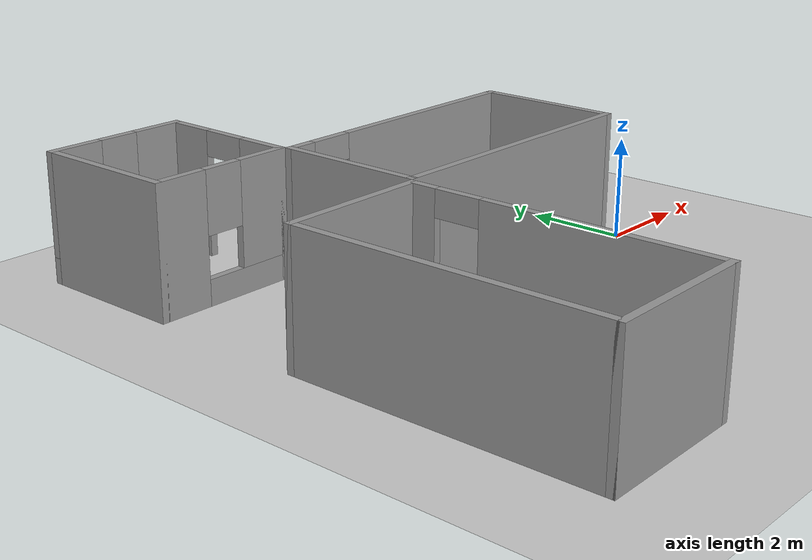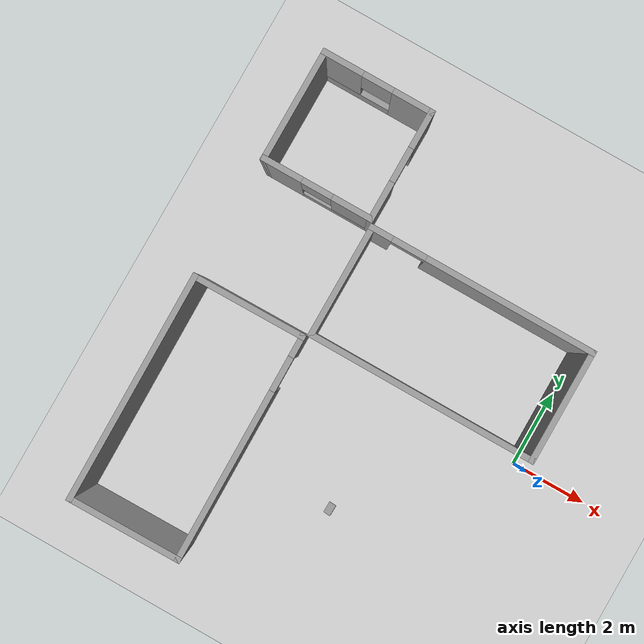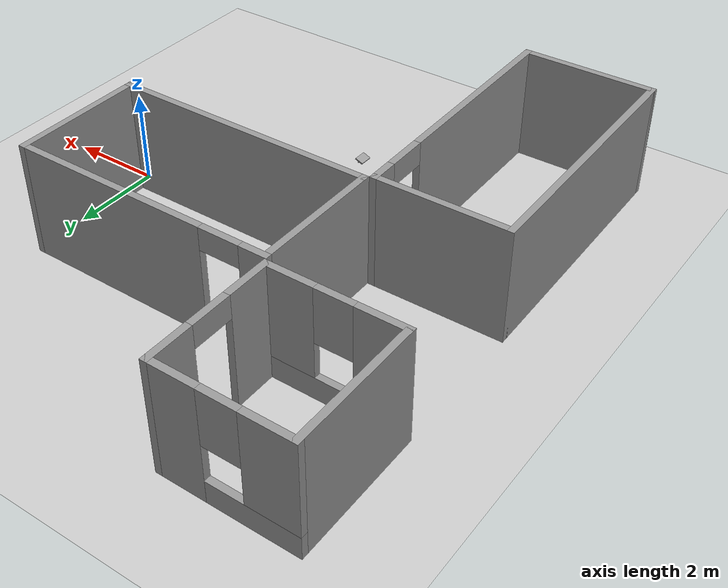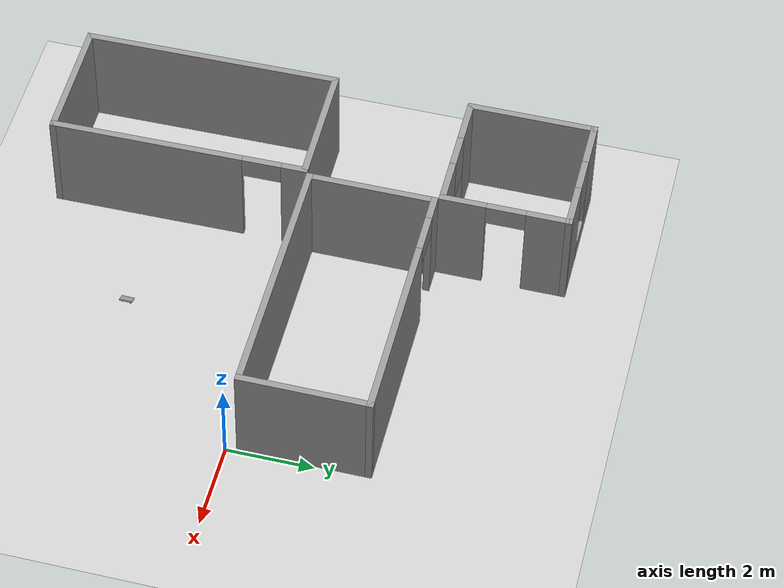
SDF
<sdf version="1.6">
 <world name="default">
  <model name="ground_plane">
   <static>1</static>
   <link name="link">
    <collision name="collision">
     <geometry><plane><normal>0 0 1</normal><size>100 100</size></plane></geometry>
     <surface><friction><ode><mu>100</mu><mu2>50</mu2></ode></friction></surface>
    </collision>
    <visual name="visual">
     <cast_shadows>0</cast_shadows>
     <geometry><plane><normal>0 0 1</normal><size>100 100</size></plane></geometry>
     <material>
      <script><uri>file://media/materials/scripts/gazebo.material</uri><name>Gazebo/Grey</name></script>
     </material>
    </visual>
   </link>
  </model>
  <model name="office1">
   <pose>-6.14182 5.37221 0 0 -0 0</pose>
   <link name="Wall_0">
    <pose>-1.3775 -2.0475 0 0 -0 0</pose>
    <visual name="Wall_0_Visual_0">
     <pose>-0.9525 0 1.25 0 -0 0</pose>
     <geometry><box><size>1.095 0.15 2.5</size></box></geometry>
     <material>
      <script><uri>file://media/materials/scripts/gazebo.material</uri><name>Gazebo/Grey</name></script>
      <ambient>1 1 1 1</ambient>
     </material>
     <meta><layer>0</layer></meta>
    </visual>
    <collision name="Wall_0_Collision_0">
     <geometry><box><size>1.095 0.15 2.5</size></box></geometry>
     <pose>-0.9525 0 1.25 0 -0 0</pose>
    </collision>
    <visual name="Wall_0_Visual_1">
     <pose>0.5475 0 0.25 0 -0 0</pose>
     <geometry><box><size>1.905 0.15 0.5</size></box></geometry>
     <material>
      <script><uri>file://media/materials/scripts/gazebo.material</uri><name>Gazebo/Grey</name></script>
      <ambient>1 1 1 1</ambient>
     </material>
     <meta><layer>0</layer></meta>
    </visual>
    <collision name="Wall_0_Collision_1">
     <geometry><box><size>1.905 0.15 0.5</size></box></geometry>
     <pose>0.5475 0 0.25 0 -0 0</pose>
    </collision>
    <visual name="Wall_0_Visual_2">
     <pose>0.9475 0 1.5 0 -0 0</pose>
     <geometry><box><size>1.105 0.15 2</size></box></geometry>
     <material>
      <script><uri>file://media/materials/scripts/gazebo.material</uri><name>Gazebo/Grey</name></script>
      <ambient>1 1 1 1</ambient>
     </material>
     <meta><layer>0</layer></meta>
    </visual>
    <collision name="Wall_0_Collision_2">
     <geometry><box><size>1.105 0.15 2</size></box></geometry>
     <pose>0.9475 0 1.5 0 -0 0</pose>
    </collision>
    <visual name="Wall_0_Visual_3">
     <pose>-0.005 0 1.9 0 -0 0</pose>
     <geometry><box><size>0.8 0.15 1.2</size></box></geometry>
     <material>
      <script><uri>file://media/materials/scripts/gazebo.material</uri><name>Gazebo/Grey</name></script>
      <ambient>1 1 1 1</ambient>
     </material>
     <meta><layer>0</layer></meta>
    </visual>
    <collision name="Wall_0_Collision_3">
     <geometry><box><size>0.8 0.15 1.2</size></box></geometry>
     <pose>-0.005 0 1.9 0 -0 0</pose>
    </collision>
   </link>
   <link name="Wall_1">
    <pose>0.0475 -0.6225 0 0 -0 1.5708</pose>
    <visual name="Wall_1_Visual_0">
     <pose>-0.9675 0 1.25 0 -0 0</pose>
     <geometry><box><size>1.065 0.15 2.5</size></box></geometry>
     <material>
      <script><uri>file://media/materials/scripts/gazebo.material</uri><name>Gazebo/Grey</name></script>
      <ambient>1 1 1 1</ambient>
     </material>
     <meta><layer>0</layer></meta>
    </visual>
    <collision name="Wall_1_Collision_0">
     <geometry><box><size>1.065 0.15 2.5</size></box></geometry>
     <pose>-0.9675 0 1.25 0 -0 0</pose>
    </collision>
    <visual name="Wall_1_Visual_1">
     <pose>0.9825 0 1.25 0 -0 0</pose>
     <geometry><box><size>1.035 0.15 2.5</size></box></geometry>
     <material>
      <script><uri>file://media/materials/scripts/gazebo.material</uri><name>Gazebo/Grey</name></script>
      <ambient>1 1 1 1</ambient>
     </material>
     <meta><layer>0</layer></meta>
    </visual>
    <collision name="Wall_1_Collision_1">
     <geometry><box><size>1.035 0.15 2.5</size></box></geometry>
     <pose>0.9825 0 1.25 0 -0 0</pose>
    </collision>
    <visual name="Wall_1_Visual_2">
     <pose>0.015 0 2.25 0 -0 0</pose>
     <geometry><box><size>0.9 0.15 0.5</size></box></geometry>
     <material>
      <script><uri>file://media/materials/scripts/gazebo.material</uri><name>Gazebo/Grey</name></script>
      <ambient>1 1 1 1</ambient>
     </material>
     <meta><layer>0</layer></meta>
    </visual>
    <collision name="Wall_1_Collision_2">
     <geometry><box><size>0.9 0.15 0.5</size></box></geometry>
     <pose>0.015 0 2.25 0 -0 0</pose>
    </collision>
   </link>
   <link name="Wall_2">
    <pose>-1.3775 0.8025 0 0 -0 3.14159</pose>
    <visual name="Wall_2_Visual_0">
     <pose>-0.9525 0 1.25 0 -0 0</pose>
     <geometry><box><size>1.095 0.15 2.5</size></box></geometry>
     <material>
      <script><uri>file://media/materials/scripts/gazebo.material</uri><name>Gazebo/Grey</name></script>
      <ambient>1 1 1 1</ambient>
     </material>
     <meta><layer>0</layer></meta>
    </visual>
    <collision name="Wall_2_Collision_0">
     <geometry><box><size>1.095 0.15 2.5</size></box></geometry>
     <pose>-0.9525 0 1.25 0 -0 0</pose>
    </collision>
    <visual name="Wall_2_Visual_1">
     <pose>0.5475 0 0.25 0 -0 0</pose>
     <geometry><box><size>1.905 0.15 0.5</size></box></geometry>
     <material>
      <script><uri>file://media/materials/scripts/gazebo.material</uri><name>Gazebo/Grey</name></script>
      <ambient>1 1 1 1</ambient>
     </material>
     <meta><layer>0</layer></meta>
    </visual>
    <collision name="Wall_2_Collision_1">
     <geometry><box><size>1.905 0.15 0.5</size></box></geometry>
     <pose>0.5475 0 0.25 0 -0 0</pose>
    </collision>
    <visual name="Wall_2_Visual_2">
     <pose>0.9475 0 1.5 0 -0 0</pose>
     <geometry><box><size>1.105 0.15 2</size></box></geometry>
     <material>
      <script><uri>file://media/materials/scripts/gazebo.material</uri><name>Gazebo/Grey</name></script>
      <ambient>1 1 1 1</ambient>
     </material>
     <meta><layer>0</layer></meta>
    </visual>
    <collision name="Wall_2_Collision_2">
     <geometry><box><size>1.105 0.15 2</size></box></geometry>
     <pose>0.9475 0 1.5 0 -0 0</pose>
    </collision>
    <visual name="Wall_2_Visual_3">
     <pose>-0.005 0 1.9 0 -0 0</pose>
     <geometry><box><size>0.8 0.15 1.2</size></box></geometry>
     <material>
      <script><uri>file://media/materials/scripts/gazebo.material</uri><name>Gazebo/Grey</name></script>
      <ambient>1 1 1 1</ambient>
     </material>
     <meta><layer>0</layer></meta>
    </visual>
    <collision name="Wall_2_Collision_3">
     <geometry><box><size>0.8 0.15 1.2</size></box></geometry>
     <pose>-0.005 0 1.9 0 -0 0</pose>
    </collision>
   </link>
   <link name="Wall_3">
    <collision name="Wall_3_Collision">
     <geometry><box><size>3 0.15 2.5</size></box></geometry>
     <pose>0 0 1.25 0 -0 0</pose>
    </collision>
    <visual name="Wall_3_Visual">
     <pose>0 0 1.25 0 -0 0</pose>
     <geometry><box><size>3 0.15 2.5</size></box></geometry>
     <material>
      <script><uri>file://media/materials/scripts/gazebo.material</uri><name>Gazebo/Grey</name></script>
      <ambient>1 1 1 1</ambient>
     </material>
     <meta><layer>0</layer></meta>
    </visual>
    <pose>-2.8025 -0.6225 0 0 -0 -1.5708</pose>
   </link>
   <static>1</static>
  </model>
  <model name="office2">
   <pose>-3.04328 2.40223 0 0 -0 0</pose>
   <link name="Wall_1">
    <collision name="Wall_1_Collision">
     <geometry><box><size>6 0.15 2.5</size></box></geometry>
     <pose>0 0 1.25 0 -0 0</pose>
    </collision>
    <visual name="Wall_1_Visual">
     <pose>0 0 1.25 0 -0 0</pose>
     <geometry><box><size>6 0.15 2.5</size></box></geometry>
     <material>
      <script><uri>file://media/materials/scripts/gazebo.material</uri><name>Gazebo/Grey</name></script>
      <ambient>1 1 1 1</ambient>
     </material>
     <meta><layer>0</layer></meta>
    </visual>
    <pose>0 -2.0825 0 0 -0 0</pose>
   </link>
   <link name="Wall_2">
    <collision name="Wall_2_Collision">
     <geometry><box><size>3 0.15 2.5</size></box></geometry>
     <pose>0 0 1.25 0 -0 0</pose>
    </collision>
    <visual name="Wall_2_Visual">
     <pose>0 0 1.25 0 -0 0</pose>
     <geometry><box><size>3 0.15 2.5</size></box></geometry>
     <material>
      <script><uri>file://media/materials/scripts/gazebo.material</uri><name>Gazebo/Grey</name></script>
      <ambient>1 1 1 1</ambient>
     </material>
     <meta><layer>0</layer></meta>
    </visual>
    <pose>2.925 -0.6575 0 0 -0 1.5708</pose>
   </link>
   <link name="Wall_3">
    <pose>0 0.7675 0 0 -0 3.14159</pose>
    <visual name="Wall_3_Visual_0">
     <pose>-0.7575 0 1.25 0 -0 0</pose>
     <geometry><box><size>4.485 0.15 2.5</size></box></geometry>
     <material>
      <script><uri>file://media/materials/scripts/gazebo.material</uri><name>Gazebo/Grey</name></script>
      <ambient>1 1 1 1</ambient>
     </material>
     <meta><layer>0</layer></meta>
    </visual>
    <collision name="Wall_3_Collision_0">
     <geometry><box><size>4.485 0.15 2.5</size></box></geometry>
     <pose>-0.7575 0 1.25 0 -0 0</pose>
    </collision>
    <visual name="Wall_3_Visual_1">
     <pose>2.6925 0 1.25 0 -0 0</pose>
     <geometry><box><size>0.615 0.15 2.5</size></box></geometry>
     <material>
      <script><uri>file://media/materials/scripts/gazebo.material</uri><name>Gazebo/Grey</name></script>
      <ambient>1 1 1 1</ambient>
     </material>
     <meta><layer>0</layer></meta>
    </visual>
    <collision name="Wall_3_Collision_1">
     <geometry><box><size>0.615 0.15 2.5</size></box></geometry>
     <pose>2.6925 0 1.25 0 -0 0</pose>
    </collision>
    <visual name="Wall_3_Visual_2">
     <pose>1.935 0 2.25 0 -0 0</pose>
     <geometry><box><size>0.9 0.15 0.5</size></box></geometry>
     <material>
      <script><uri>file://media/materials/scripts/gazebo.material</uri><name>Gazebo/Grey</name></script>
      <ambient>1 1 1 1</ambient>
     </material>
     <meta><layer>0</layer></meta>
    </visual>
    <collision name="Wall_3_Collision_2">
     <geometry><box><size>0.9 0.15 0.5</size></box></geometry>
     <pose>1.935 0 2.25 0 -0 0</pose>
    </collision>
   </link>
   <link name="Wall_4">
    <collision name="Wall_4_Collision">
     <geometry><box><size>3 0.15 2.5</size></box></geometry>
     <pose>0 0 1.25 0 -0 0</pose>
    </collision>
    <visual name="Wall_4_Visual">
     <pose>0 0 1.25 0 -0 0</pose>
     <geometry><box><size>3 0.15 2.5</size></box></geometry>
     <material>
      <script><uri>file://media/materials/scripts/gazebo.material</uri><name>Gazebo/Grey</name></script>
      <ambient>1 1 1 1</ambient>
     </material>
     <meta><layer>0</layer></meta>
    </visual>
    <pose>-2.925 -0.6575 0 0 -0 -1.5708</pose>
   </link>
   <static>1</static>
  </model>
  <model name="office2_0">
   <pose>-6.86165 -2.75417 0 0 0 -1.56197</pose>
   <link name="Wall_1">
    <collision name="Wall_1_Collision">
     <geometry><box><size>6 0.15 2.5</size></box></geometry>
     <pose>0 0 1.25 0 -0 0</pose>
    </collision>
    <visual name="Wall_1_Visual">
     <pose>0 0 1.25 0 -0 0</pose>
     <geometry><box><size>6 0.15 2.5</size></box></geometry>
     <material>
      <script><uri>file://media/materials/scripts/gazebo.material</uri><name>Gazebo/Grey</name></script>
      <ambient>1 1 1 1</ambient>
     </material>
     <meta><layer>0</layer></meta>
    </visual>
    <pose>0 -2.0825 0 0 -0 0</pose>
   </link>
   <link name="Wall_2">
    <collision name="Wall_2_Collision">
     <geometry><box><size>3 0.15 2.5</size></box></geometry>
     <pose>0 0 1.25 0 -0 0</pose>
    </collision>
    <visual name="Wall_2_Visual">
     <pose>0 0 1.25 0 -0 0</pose>
     <geometry><box><size>3 0.15 2.5</size></box></geometry>
     <material>
      <script><uri>file://media/materials/scripts/gazebo.material</uri><name>Gazebo/Grey</name></script>
      <ambient>1 1 1 1</ambient>
     </material>
     <meta><layer>0</layer></meta>
    </visual>
    <pose>2.925 -0.6575 0 0 -0 1.5708</pose>
   </link>
   <link name="Wall_3">
    <pose>0 0.7675 0 0 -0 3.14159</pose>
    <visual name="Wall_3_Visual_0">
     <pose>-0.7575 0 1.25 0 -0 0</pose>
     <geometry><box><size>4.485 0.15 2.5</size></box></geometry>
     <material>
      <script><uri>file://media/materials/scripts/gazebo.material</uri><name>Gazebo/Grey</name></script>
      <ambient>1 1 1 1</ambient>
     </material>
     <meta><layer>0</layer></meta>
    </visual>
    <collision name="Wall_3_Collision_0">
     <geometry><box><size>4.485 0.15 2.5</size></box></geometry>
     <pose>-0.7575 0 1.25 0 -0 0</pose>
    </collision>
    <visual name="Wall_3_Visual_1">
     <pose>2.6925 0 1.25 0 -0 0</pose>
     <geometry><box><size>0.615 0.15 2.5</size></box></geometry>
     <material>
      <script><uri>file://media/materials/scripts/gazebo.material</uri><name>Gazebo/Grey</name></script>
      <ambient>1 1 1 1</ambient>
     </material>
     <meta><layer>0</layer></meta>
    </visual>
    <collision name="Wall_3_Collision_1">
     <geometry><box><size>0.615 0.15 2.5</size></box></geometry>
     <pose>2.6925 0 1.25 0 -0 0</pose>
    </collision>
    <visual name="Wall_3_Visual_2">
     <pose>1.935 0 2.25 0 -0 0</pose>
     <geometry><box><size>0.9 0.15 0.5</size></box></geometry>
     <material>
      <script><uri>file://media/materials/scripts/gazebo.material</uri><name>Gazebo/Grey</name></script>
      <ambient>1 1 1 1</ambient>
     </material>
     <meta><layer>0</layer></meta>
    </visual>
    <collision name="Wall_3_Collision_2">
     <geometry><box><size>0.9 0.15 0.5</size></box></geometry>
     <pose>1.935 0 2.25 0 -0 0</pose>
    </collision>
   </link>
   <link name="Wall_4">
    <collision name="Wall_4_Collision">
     <geometry><box><size>3 0.15 2.5</size></box></geometry>
     <pose>0 0 1.25 0 -0 0</pose>
    </collision>
    <visual name="Wall_4_Visual">
     <pose>0 0 1.25 0 -0 0</pose>
     <geometry><box><size>3 0.15 2.5</size></box></geometry>
     <material>
      <script><uri>file://media/materials/scripts/gazebo.material</uri><name>Gazebo/Grey</name></script>
      <ambient>1 1 1 1</ambient>
     </material>
     <meta><layer>0</layer></meta>
    </visual>
    <pose>-2.925 -0.6575 0 0 -0 -1.5708</pose>
   </link>
   <static>1</static>
  </model>
  <model name="humanoid_1">
   <link name="link_0">
    <inertial>
     <mass>1</mass>
     <inertia>
      <ixx>0.166667</ixx>
      <ixy>0</ixy>
      <ixz>0</ixz>
      <iyy>0.166667</iyy>
      <iyz>0</iyz>
      <izz>0.166667</izz>
     </inertia>
    </inertial>
    <pose>0.02879 -0.034222 0.3501 0 -0 0</pose>
    <visual name="visual">
     <geometry><box><size>0.2 0.3 0.03</size></box></geometry>
     <material>
      <lighting>1</lighting>
      <script><uri>file://media/materials/scripts/gazebo.material</uri><name>Gazebo/Grey</name></script>
      <shader type="pixel"><normal_map>__default__</normal_map></shader>
      <ambient>0.3 0.3 0.3 1</ambient>
      <diffuse>0.7 0.7 0.7 1</diffuse>
      <specular>0.01 0.01 0.01 1</specular>
      <emissive>0 0 0 1</emissive>
     </material>
    </visual>
    <collision name="collision">
     <geometry><box><size>0.2 0.3 0.03</size></box></geometry>
     <surface>
      <friction>
       <ode><mu>1</mu><mu2>1</mu2><fdir1>0 0 0</fdir1><slip1>0</slip1><slip2>0</slip2></ode>
       <torsional>
        <coefficient>1</coefficient>
        <patch_radius>0</patch_radius>
        <surface_radius>0</surface_radius>
        <use_patch_radius>1</use_patch_radius>
        <ode><slip>0</slip></ode>
       </torsional>
      </friction>
      <bounce><restitution_coefficient>0</restitution_coefficient><threshold>1e+06</threshold></bounce>
      <contact>
       <collide_without_contact>0</collide_without_contact>
       <collide_without_contact_bitmask>1</collide_without_contact_bitmask>
       <collide_bitmask>1</collide_bitmask>
       <ode>
        <soft_cfm>0</soft_cfm>
        <soft_erp>0.2</soft_erp>
        <kp>1e+13</kp>
        <kd>1</kd>
        <max_vel>0.01</max_vel>
        <min_depth>0</min_depth>
       </ode>
       <bullet>
        <split_impulse>1</split_impulse>
        <split_impulse_penetration_threshold>-0.01</split_impulse_penetration_threshold>
        <soft_cfm>0</soft_cfm>
        <soft_erp>0.2</soft_erp>
        <kp>1e+13</kp>
        <kd>1</kd>
       </bullet>
      </contact>
     </surface>
    </collision>
   </link>
   <model name="full-leg">
    <link name="link_0">
     <inertial>
      <mass>0.0847963</mass>
      <inertia>
       <ixx>0.00010908</ixx>
       <ixy>0</ixy>
       <ixz>0</ixz>
       <iyy>7.137e-05</iyy>
       <iyz>0</iyz>
       <izz>0.00017903</izz>
      </inertia>
     </inertial>
     <pose>0.065943 0.108898 0.091666 0 -0 0</pose>
     <visual name="visual">
      <geometry><box><size>0.1 0.12 0.01</size></box></geometry>
      <material>
       <lighting>1</lighting>
       <script><uri>file://media/materials/scripts/gazebo.material</uri><name>Gazebo/Grey</name></script>
       <shader type="pixel"><normal_map>__default__</normal_map></shader>
       <ambient>0.3 0.3 0.3 1</ambient>
       <diffuse>0.7 0.7 0.7 1</diffuse>
       <specular>0.01 0.01 0.01 1</specular>
       <emissive>0 0 0 1</emissive>
      </material>
     </visual>
     <collision name="collision">
      <geometry><box><size>0.1 0.12 0.01</size></box></geometry>
      <surface>
       <friction>
        <ode><mu>1</mu><mu2>1</mu2><fdir1>0 0 0</fdir1><slip1>0</slip1><slip2>0</slip2></ode>
        <torsional>
         <coefficient>1</coefficient>
         <patch_radius>0</patch_radius>
         <surface_radius>0</surface_radius>
         <use_patch_radius>1</use_patch_radius>
         <ode><slip>0</slip></ode>
        </torsional>
       </friction>
       <bounce><restitution_coefficient>0</restitution_coefficient><threshold>1e+06</threshold></bounce>
       <contact>
        <collide_without_contact>0</collide_without_contact>
        <collide_without_contact_bitmask>1</collide_without_contact_bitmask>
        <collide_bitmask>1</collide_bitmask>
        <ode>
         <soft_cfm>0</soft_cfm>
         <soft_erp>0.2</soft_erp>
         <kp>1e+13</kp>
         <kd>1</kd>
         <max_vel>0.01</max_vel>
         <min_depth>0</min_depth>
        </ode>
        <bullet>
         <split_impulse>1</split_impulse>
         <split_impulse_penetration_threshold>-0.01</split_impulse_penetration_threshold>
         <soft_cfm>0</soft_cfm>
         <soft_erp>0.2</soft_erp>
         <kp>1e+13</kp>
         <kd>1</kd>
        </bullet>
       </contact>
      </surface>
     </collision>
    </link>
    <link name="link_0_clone">
     <inertial>
      <mass>0.0847963</mass>
      <inertia>
       <ixx>0.00010908</ixx>
       <ixy>0</ixy>
       <ixz>0</ixz>
       <iyy>7.137e-05</iyy>
       <iyz>0</iyz>
       <izz>0.00017903</izz>
      </inertia>
     </inertial>
     <pose>0.065943 0.183898 0.091666 0 0 -0.01</pose>
     <visual name="visual">
      <geometry><box><size>0.1 0.03 0.01</size></box></geometry>
      <material>
       <lighting>1</lighting>
       <script><uri>file://media/materials/scripts/gazebo.material</uri><name>Gazebo/Grey</name></script>
       <shader type="pixel"><normal_map>__default__</normal_map></shader>
       <ambient>0.3 0.3 0.3 1</ambient>
       <diffuse>0.7 0.7 0.7 1</diffuse>
       <specular>0.01 0.01 0.01 1</specular>
       <emissive>0 0 0 1</emissive>
      </material>
     </visual>
     <collision name="collision">
      <geometry><box><size>0.1 0.03 0.01</size></box></geometry>
      <surface>
       <friction>
        <ode><mu>1</mu><mu2>1</mu2><fdir1>0 0 0</fdir1><slip1>0</slip1><slip2>0</slip2></ode>
        <torsional>
         <coefficient>1</coefficient>
         <patch_radius>0</patch_radius>
         <surface_radius>0</surface_radius>
         <use_patch_radius>1</use_patch_radius>
         <ode><slip>0</slip></ode>
        </torsional>
       </friction>
       <bounce><restitution_coefficient>0</restitution_coefficient><threshold>1e+06</threshold></bounce>
       <contact>
        <collide_without_contact>0</collide_without_contact>
        <collide_without_contact_bitmask>1</collide_without_contact_bitmask>
        <collide_bitmask>1</collide_bitmask>
        <ode>
         <soft_cfm>0</soft_cfm>
         <soft_erp>0.2</soft_erp>
         <kp>1e+13</kp>
         <kd>1</kd>
         <max_vel>0.01</max_vel>
         <min_depth>0</min_depth>
        </ode>
        <bullet>
         <split_impulse>1</split_impulse>
         <split_impulse_penetration_threshold>-0.01</split_impulse_penetration_threshold>
         <soft_cfm>0</soft_cfm>
         <soft_erp>0.2</soft_erp>
         <kp>1e+13</kp>
         <kd>1</kd>
        </bullet>
       </contact>
      </surface>
     </collision>
    </link>
    <link name="link_1">
     <inertial>
      <mass>1</mass>
      <inertia><ixx>0.145833</ixx><ixy>0</ixy><ixz>0</ixz><iyy>0.145833</iyy><iyz>0</iyz><izz>0.125</izz></inertia>
     </inertial>
     <pose>0.065943 0.068898 0.191666 0 -0 0</pose>
     <visual name="visual">
      <geometry><cylinder><radius>0.02</radius><length>0.2</length></cylinder></geometry>
      <material>
       <lighting>1</lighting>
       <script><uri>file://media/materials/scripts/gazebo.material</uri><name>Gazebo/Grey</name></script>
       <shader type="pixel"><normal_map>__default__</normal_map></shader>
       <ambient>0.3 0.3 0.3 1</ambient>
       <diffuse>0.7 0.7 0.7 1</diffuse>
       <specular>0.01 0.01 0.01 1</specular>
       <emissive>0 0 0 1</emissive>
      </material>
     </visual>
     <collision name="collision">
      <geometry><cylinder><radius>0.02</radius><length>0.2</length></cylinder></geometry>
      <surface>
       <friction>
        <ode><mu>1</mu><mu2>1</mu2><fdir1>0 0 0</fdir1><slip1>0</slip1><slip2>0</slip2></ode>
        <torsional>
         <coefficient>1</coefficient>
         <patch_radius>0</patch_radius>
         <surface_radius>0</surface_radius>
         <use_patch_radius>1</use_patch_radius>
         <ode><slip>0</slip></ode>
        </torsional>
       </friction>
       <bounce><restitution_coefficient>0</restitution_coefficient><threshold>1e+06</threshold></bounce>
       <contact>
        <collide_without_contact>0</collide_without_contact>
        <collide_without_contact_bitmask>1</collide_without_contact_bitmask>
        <collide_bitmask>1</collide_bitmask>
        <ode>
         <soft_cfm>0</soft_cfm>
         <soft_erp>0.2</soft_erp>
         <kp>1e+13</kp>
         <kd>1</kd>
         <max_vel>0.01</max_vel>
         <min_depth>0</min_depth>
        </ode>
        <bullet>
         <split_impulse>1</split_impulse>
         <split_impulse_penetration_threshold>-0.01</split_impulse_penetration_threshold>
         <soft_cfm>0</soft_cfm>
         <soft_erp>0.2</soft_erp>
         <kp>1e+13</kp>
         <kd>1</kd>
        </bullet>
       </contact>
      </surface>
     </collision>
    </link>
    <link name="link_1_clone">
     <inertial>
      <mass>1</mass>
      <inertia><ixx>0.145833</ixx><ixy>0</ixy><ixz>0</ixz><iyy>0.145833</iyy><iyz>0</iyz><izz>0.125</izz></inertia>
     </inertial>
     <pose>0.065943 0.068898 0.391666 0 -0 0</pose>
     <visual name="visual">
      <geometry><cylinder><radius>0.02</radius><length>0.2</length></cylinder></geometry>
      <material>
       <lighting>1</lighting>
       <script><uri>file://media/materials/scripts/gazebo.material</uri><name>Gazebo/Grey</name></script>
       <shader type="pixel"><normal_map>__default__</normal_map></shader>
       <ambient>0.3 0.3 0.3 1</ambient>
       <diffuse>0.7 0.7 0.7 1</diffuse>
       <specular>0.01 0.01 0.01 1</specular>
       <emissive>0 0 0 1</emissive>
      </material>
     </visual>
     <collision name="collision">
      <geometry><cylinder><radius>0.02</radius><length>0.2</length></cylinder></geometry>
      <surface>
       <friction>
        <ode><mu>1</mu><mu2>1</mu2><fdir1>0 0 0</fdir1><slip1>0</slip1><slip2>0</slip2></ode>
        <torsional>
         <coefficient>1</coefficient>
         <patch_radius>0</patch_radius>
         <surface_radius>0</surface_radius>
         <use_patch_radius>1</use_patch_radius>
         <ode><slip>0</slip></ode>
        </torsional>
       </friction>
       <bounce><restitution_coefficient>0</restitution_coefficient><threshold>1e+06</threshold></bounce>
       <contact>
        <collide_without_contact>0</collide_without_contact>
        <collide_without_contact_bitmask>1</collide_without_contact_bitmask>
        <collide_bitmask>1</collide_bitmask>
        <ode>
         <soft_cfm>0</soft_cfm>
         <soft_erp>0.2</soft_erp>
         <kp>1e+13</kp>
         <kd>1</kd>
         <max_vel>0.01</max_vel>
         <min_depth>0</min_depth>
        </ode>
        <bullet>
         <split_impulse>1</split_impulse>
         <split_impulse_penetration_threshold>-0.01</split_impulse_penetration_threshold>
         <soft_cfm>0</soft_cfm>
         <soft_erp>0.2</soft_erp>
         <kp>1e+13</kp>
         <kd>1</kd>
        </bullet>
       </contact>
      </surface>
     </collision>
    </link>
    <joint name="link_0_JOINT_0" type="revolute">
     <parent>link_0</parent>
     <child>link_0_clone</child>
     <pose>0 -0.015 0 0 -0 0</pose>
     <axis>
      <xyz>1 0 0</xyz>
      <limit>
       <lower>-1.79769e+308</lower>
       <upper>1.79769e+308</upper>
       <effort>-1</effort>
       <velocity>-1</velocity>
      </limit>
      <dynamics>
       <spring_reference>0</spring_reference>
       <spring_stiffness>0</spring_stiffness>
       <damping>0</damping>
      </dynamics>
      <use_parent_model_frame>0</use_parent_model_frame>
     </axis>
     <physics>
      <ode><limit><cfm>0</cfm><erp>0.2</erp></limit><suspension><cfm>0</cfm><erp>0.2</erp></suspension></ode>
     </physics>
    </joint>
    <joint name="link_0_JOINT_2" type="revolute">
     <parent>link_0</parent>
     <child>link_1</child>
     <pose>0 0 -0.1 0 -0 0</pose>
     <axis>
      <xyz>1 0 0</xyz>
      <limit>
       <lower>-1.79769e+308</lower>
       <upper>1.79769e+308</upper>
       <effort>-1</effort>
       <velocity>-1</velocity>
      </limit>
      <dynamics>
       <spring_reference>0</spring_reference>
       <spring_stiffness>0</spring_stiffness>
       <damping>0</damping>
      </dynamics>
      <use_parent_model_frame>0</use_parent_model_frame>
     </axis>
     <physics>
      <ode><limit><cfm>0</cfm><erp>0.2</erp></limit><suspension><cfm>0</cfm><erp>0.2</erp></suspension></ode>
     </physics>
    </joint>
    <joint name="link_1_JOINT_3" type="revolute">
     <parent>link_1</parent>
     <child>link_1_clone</child>
     <pose>0 0 -0.1 0 -0 0</pose>
     <axis>
      <xyz>1 0 0</xyz>
      <limit>
       <lower>-1.79769e+308</lower>
       <upper>1.79769e+308</upper>
       <effort>-1</effort>
       <velocity>-1</velocity>
      </limit>
      <dynamics>
       <spring_reference>0</spring_reference>
       <spring_stiffness>0</spring_stiffness>
       <damping>0</damping>
      </dynamics>
      <use_parent_model_frame>0</use_parent_model_frame>
     </axis>
     <physics>
      <ode><limit><cfm>0</cfm><erp>0.2</erp></limit><suspension><cfm>0</cfm><erp>0.2</erp></suspension></ode>
     </physics>
    </joint>
    <static>0</static>
    <pose>-0.042531 -0.066167 -0.154901 0 0 -1.57989</pose>
   </model>
   <model name="full-leg_clone">
    <link name="link_0">
     <inertial>
      <mass>0.0847963</mass>
      <inertia>
       <ixx>0.00010908</ixx>
       <ixy>0</ixy>
       <ixz>0</ixz>
       <iyy>7.137e-05</iyy>
       <iyz>0</iyz>
       <izz>0.00017903</izz>
      </inertia>
     </inertial>
     <pose>0.065943 0.108898 0.091666 0 -0 0</pose>
     <visual name="visual">
      <geometry><box><size>0.1 0.12 0.01</size></box></geometry>
      <material>
       <lighting>1</lighting>
       <script><uri>file://media/materials/scripts/gazebo.material</uri><name>Gazebo/Grey</name></script>
       <shader type="pixel"><normal_map>__default__</normal_map></shader>
       <ambient>0.3 0.3 0.3 1</ambient>
       <diffuse>0.7 0.7 0.7 1</diffuse>
       <specular>0.01 0.01 0.01 1</specular>
       <emissive>0 0 0 1</emissive>
      </material>
     </visual>
     <collision name="collision">
      <geometry><box><size>0.1 0.12 0.01</size></box></geometry>
      <surface>
       <friction>
        <ode><mu>1</mu><mu2>1</mu2><fdir1>0 0 0</fdir1><slip1>0</slip1><slip2>0</slip2></ode>
        <torsional>
         <coefficient>1</coefficient>
         <patch_radius>0</patch_radius>
         <surface_radius>0</surface_radius>
         <use_patch_radius>1</use_patch_radius>
         <ode><slip>0</slip></ode>
        </torsional>
       </friction>
       <bounce><restitution_coefficient>0</restitution_coefficient><threshold>1e+06</threshold></bounce>
       <contact>
        <collide_without_contact>0</collide_without_contact>
        <collide_without_contact_bitmask>1</collide_without_contact_bitmask>
        <collide_bitmask>1</collide_bitmask>
        <ode>
         <soft_cfm>0</soft_cfm>
         <soft_erp>0.2</soft_erp>
         <kp>1e+13</kp>
         <kd>1</kd>
         <max_vel>0.01</max_vel>
         <min_depth>0</min_depth>
        </ode>
        <bullet>
         <split_impulse>1</split_impulse>
         <split_impulse_penetration_threshold>-0.01</split_impulse_penetration_threshold>
         <soft_cfm>0</soft_cfm>
         <soft_erp>0.2</soft_erp>
         <kp>1e+13</kp>
         <kd>1</kd>
        </bullet>
       </contact>
      </surface>
     </collision>
    </link>
    <link name="link_0_clone">
     <inertial>
      <mass>0.0847963</mass>
      <inertia>
       <ixx>0.00010908</ixx>
       <ixy>0</ixy>
       <ixz>0</ixz>
       <iyy>7.137e-05</iyy>
       <iyz>0</iyz>
       <izz>0.00017903</izz>
      </inertia>
     </inertial>
     <pose>0.065943 0.183898 0.091666 0 0 -0.01</pose>
     <visual name="visual">
      <geometry><box><size>0.1 0.03 0.01</size></box></geometry>
      <material>
       <lighting>1</lighting>
       <script><uri>file://media/materials/scripts/gazebo.material</uri><name>Gazebo/Grey</name></script>
       <shader type="pixel"><normal_map>__default__</normal_map></shader>
       <ambient>0.3 0.3 0.3 1</ambient>
       <diffuse>0.7 0.7 0.7 1</diffuse>
       <specular>0.01 0.01 0.01 1</specular>
       <emissive>0 0 0 1</emissive>
      </material>
     </visual>
     <collision name="collision">
      <geometry><box><size>0.1 0.03 0.01</size></box></geometry>
      <surface>
       <friction>
        <ode><mu>1</mu><mu2>1</mu2><fdir1>0 0 0</fdir1><slip1>0</slip1><slip2>0</slip2></ode>
        <torsional>
         <coefficient>1</coefficient>
         <patch_radius>0</patch_radius>
         <surface_radius>0</surface_radius>
         <use_patch_radius>1</use_patch_radius>
         <ode><slip>0</slip></ode>
        </torsional>
       </friction>
       <bounce><restitution_coefficient>0</restitution_coefficient><threshold>1e+06</threshold></bounce>
       <contact>
        <collide_without_contact>0</collide_without_contact>
        <collide_without_contact_bitmask>1</collide_without_contact_bitmask>
        <collide_bitmask>1</collide_bitmask>
        <ode>
         <soft_cfm>0</soft_cfm>
         <soft_erp>0.2</soft_erp>
         <kp>1e+13</kp>
         <kd>1</kd>
         <max_vel>0.01</max_vel>
         <min_depth>0</min_depth>
        </ode>
        <bullet>
         <split_impulse>1</split_impulse>
         <split_impulse_penetration_threshold>-0.01</split_impulse_penetration_threshold>
         <soft_cfm>0</soft_cfm>
         <soft_erp>0.2</soft_erp>
         <kp>1e+13</kp>
         <kd>1</kd>
        </bullet>
       </contact>
      </surface>
     </collision>
    </link>
    <link name="link_1">
     <inertial>
      <mass>1</mass>
      <inertia><ixx>0.145833</ixx><ixy>0</ixy><ixz>0</ixz><iyy>0.145833</iyy><iyz>0</iyz><izz>0.125</izz></inertia>
     </inertial>
     <pose>0.065943 0.068898 0.191666 0 -0 0</pose>
     <visual name="visual">
      <geometry><cylinder><radius>0.02</radius><length>0.2</length></cylinder></geometry>
      <material>
       <lighting>1</lighting>
       <script><uri>file://media/materials/scripts/gazebo.material</uri><name>Gazebo/Grey</name></script>
       <shader type="pixel"><normal_map>__default__</normal_map></shader>
       <ambient>0.3 0.3 0.3 1</ambient>
       <diffuse>0.7 0.7 0.7 1</diffuse>
       <specular>0.01 0.01 0.01 1</specular>
       <emissive>0 0 0 1</emissive>
      </material>
     </visual>
     <collision name="collision">
      <geometry><cylinder><radius>0.02</radius><length>0.2</length></cylinder></geometry>
      <surface>
       <friction>
        <ode><mu>1</mu><mu2>1</mu2><fdir1>0 0 0</fdir1><slip1>0</slip1><slip2>0</slip2></ode>
        <torsional>
         <coefficient>1</coefficient>
         <patch_radius>0</patch_radius>
         <surface_radius>0</surface_radius>
         <use_patch_radius>1</use_patch_radius>
         <ode><slip>0</slip></ode>
        </torsional>
       </friction>
       <bounce><restitution_coefficient>0</restitution_coefficient><threshold>1e+06</threshold></bounce>
       <contact>
        <collide_without_contact>0</collide_without_contact>
        <collide_without_contact_bitmask>1</collide_without_contact_bitmask>
        <collide_bitmask>1</collide_bitmask>
        <ode>
         <soft_cfm>0</soft_cfm>
         <soft_erp>0.2</soft_erp>
         <kp>1e+13</kp>
         <kd>1</kd>
         <max_vel>0.01</max_vel>
         <min_depth>0</min_depth>
        </ode>
        <bullet>
         <split_impulse>1</split_impulse>
         <split_impulse_penetration_threshold>-0.01</split_impulse_penetration_threshold>
         <soft_cfm>0</soft_cfm>
         <soft_erp>0.2</soft_erp>
         <kp>1e+13</kp>
         <kd>1</kd>
        </bullet>
       </contact>
      </surface>
     </collision>
    </link>
    <link name="link_1_clone">
     <inertial>
      <mass>1</mass>
      <inertia><ixx>0.145833</ixx><ixy>0</ixy><ixz>0</ixz><iyy>0.145833</iyy><iyz>0</iyz><izz>0.125</izz></inertia>
     </inertial>
     <pose>0.065943 0.068898 0.391666 0 -0 0</pose>
     <visual name="visual">
      <geometry><cylinder><radius>0.02</radius><length>0.2</length></cylinder></geometry>
      <material>
       <lighting>1</lighting>
       <script><uri>file://media/materials/scripts/gazebo.material</uri><name>Gazebo/Grey</name></script>
       <shader type="pixel"><normal_map>__default__</normal_map></shader>
       <ambient>0.3 0.3 0.3 1</ambient>
       <diffuse>0.7 0.7 0.7 1</diffuse>
       <specular>0.01 0.01 0.01 1</specular>
       <emissive>0 0 0 1</emissive>
      </material>
     </visual>
     <collision name="collision">
      <geometry><cylinder><radius>0.02</radius><length>0.2</length></cylinder></geometry>
      <surface>
       <friction>
        <ode><mu>1</mu><mu2>1</mu2><fdir1>0 0 0</fdir1><slip1>0</slip1><slip2>0</slip2></ode>
        <torsional>
         <coefficient>1</coefficient>
         <patch_radius>0</patch_radius>
         <surface_radius>0</surface_radius>
         <use_patch_radius>1</use_patch_radius>
         <ode><slip>0</slip></ode>
        </torsional>
       </friction>
       <bounce><restitution_coefficient>0</restitution_coefficient><threshold>1e+06</threshold></bounce>
       <contact>
        <collide_without_contact>0</collide_without_contact>
        <collide_without_contact_bitmask>1</collide_without_contact_bitmask>
        <collide_bitmask>1</collide_bitmask>
        <ode>
         <soft_cfm>0</soft_cfm>
         <soft_erp>0.2</soft_erp>
         <kp>1e+13</kp>
         <kd>1</kd>
         <max_vel>0.01</max_vel>
         <min_depth>0</min_depth>
        </ode>
        <bullet>
         <split_impulse>1</split_impulse>
         <split_impulse_penetration_threshold>-0.01</split_impulse_penetration_threshold>
         <soft_cfm>0</soft_cfm>
         <soft_erp>0.2</soft_erp>
         <kp>1e+13</kp>
         <kd>1</kd>
        </bullet>
       </contact>
      </surface>
     </collision>
    </link>
    <joint name="link_0_JOINT_0" type="revolute">
     <parent>link_0</parent>
     <child>link_0_clone</child>
     <pose>0 -0.015 0 0 -0 0</pose>
     <axis>
      <xyz>1 0 0</xyz>
      <limit>
       <lower>-1.79769e+308</lower>
       <upper>1.79769e+308</upper>
       <effort>-1</effort>
       <velocity>-1</velocity>
      </limit>
      <dynamics>
       <spring_reference>0</spring_reference>
       <spring_stiffness>0</spring_stiffness>
       <damping>0</damping>
      </dynamics>
      <use_parent_model_frame>0</use_parent_model_frame>
     </axis>
     <physics>
      <ode><limit><cfm>0</cfm><erp>0.2</erp></limit><suspension><cfm>0</cfm><erp>0.2</erp></suspension></ode>
     </physics>
    </joint>
    <joint name="link_0_JOINT_2" type="revolute">
     <parent>link_0</parent>
     <child>link_1</child>
     <pose>0 0 -0.1 0 -0 0</pose>
     <axis>
      <xyz>1 0 0</xyz>
      <limit>
       <lower>-1.79769e+308</lower>
       <upper>1.79769e+308</upper>
       <effort>-1</effort>
       <velocity>-1</velocity>
      </limit>
      <dynamics>
       <spring_reference>0</spring_reference>
       <spring_stiffness>0</spring_stiffness>
       <damping>0</damping>
      </dynamics>
      <use_parent_model_frame>0</use_parent_model_frame>
     </axis>
     <physics>
      <ode><limit><cfm>0</cfm><erp>0.2</erp></limit><suspension><cfm>0</cfm><erp>0.2</erp></suspension></ode>
     </physics>
    </joint>
    <joint name="link_1_JOINT_3" type="revolute">
     <parent>link_1</parent>
     <child>link_1_clone</child>
     <pose>0 0 -0.1 0 -0 0</pose>
     <axis>
      <xyz>1 0 0</xyz>
      <limit>
       <lower>-1.79769e+308</lower>
       <upper>1.79769e+308</upper>
       <effort>-1</effort>
       <velocity>-1</velocity>
      </limit>
      <dynamics>
       <spring_reference>0</spring_reference>
       <spring_stiffness>0</spring_stiffness>
       <damping>0</damping>
      </dynamics>
      <use_parent_model_frame>0</use_parent_model_frame>
     </axis>
     <physics>
      <ode><limit><cfm>0</cfm><erp>0.2</erp></limit><suspension><cfm>0</cfm><erp>0.2</erp></suspension></ode>
     </physics>
    </joint>
    <static>0</static>
    <pose>-0.036586 0.130944 -0.15615 0 0 -1.57989</pose>
   </model>
   <joint name="link_1_clone_JOINT_0" type="revolute">
    <parent>full-leg::link_1_clone</parent>
    <child>link_0</child>
    <pose>0 -0.1 0 0 -0 0</pose>
    <axis>
     <xyz>0 1 0</xyz>
     <limit>
      <lower>-1.79769e+308</lower>
      <upper>1.79769e+308</upper>
      <effort>-1</effort>
      <velocity>-1</velocity>
     </limit>
     <dynamics>
      <spring_reference>0</spring_reference>
      <spring_stiffness>0</spring_stiffness>
      <damping>0</damping>
      <friction>0</friction>
     </dynamics>
     <use_parent_model_frame>0</use_parent_model_frame>
    </axis>
    <physics>
     <ode><limit><cfm>0</cfm><erp>0.2</erp></limit><suspension><cfm>0</cfm><erp>0.2</erp></suspension></ode>
    </physics>
   </joint>
   <joint name="link_1_clone_JOINT_1" type="revolute">
    <parent>full-leg_clone::link_1_clone</parent>
    <child>link_0</child>
    <pose>0 0.1 0 0 -0 0</pose>
    <axis>
     <xyz>0 1 0</xyz>
     <limit>
      <lower>-1.79769e+308</lower>
      <upper>1.79769e+308</upper>
      <effort>-1</effort>
      <velocity>-1</velocity>
     </limit>
     <dynamics>
      <spring_reference>0</spring_reference>
      <spring_stiffness>0</spring_stiffness>
      <damping>0</damping>
     </dynamics>
     <use_parent_model_frame>0</use_parent_model_frame>
    </axis>
    <physics>
     <ode><limit><cfm>0</cfm><erp>0.2</erp></limit><suspension><cfm>0</cfm><erp>0.2</erp></suspension></ode>
    </physics>
   </joint>
   <static>0</static>
   <pose>-3.35074 -3.24039 -0.284352 -0.002961 -0.380491 -0.021125</pose>
  </model>
 </world>
</sdf>
